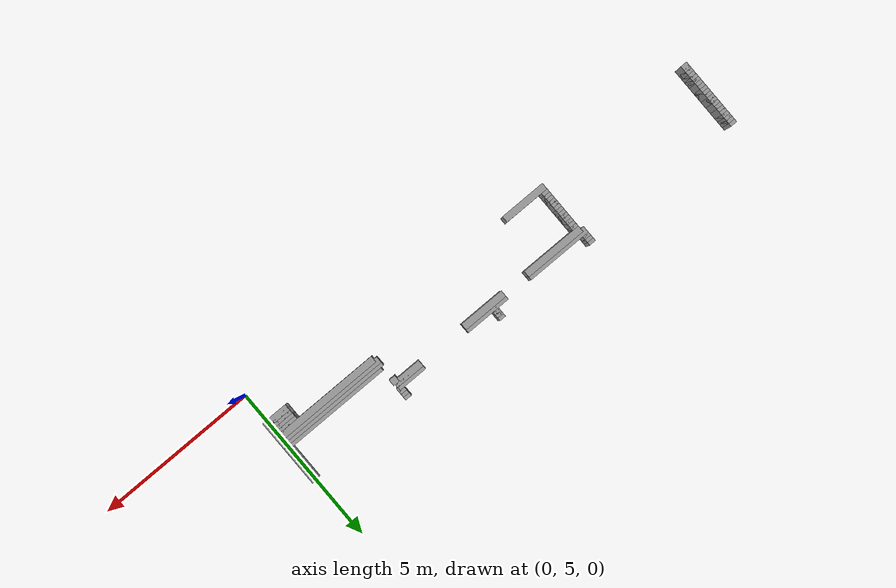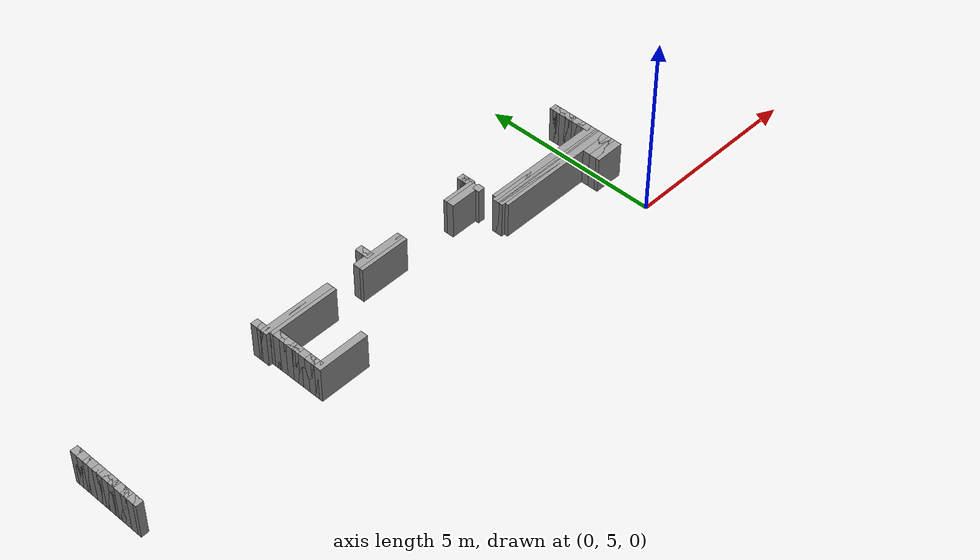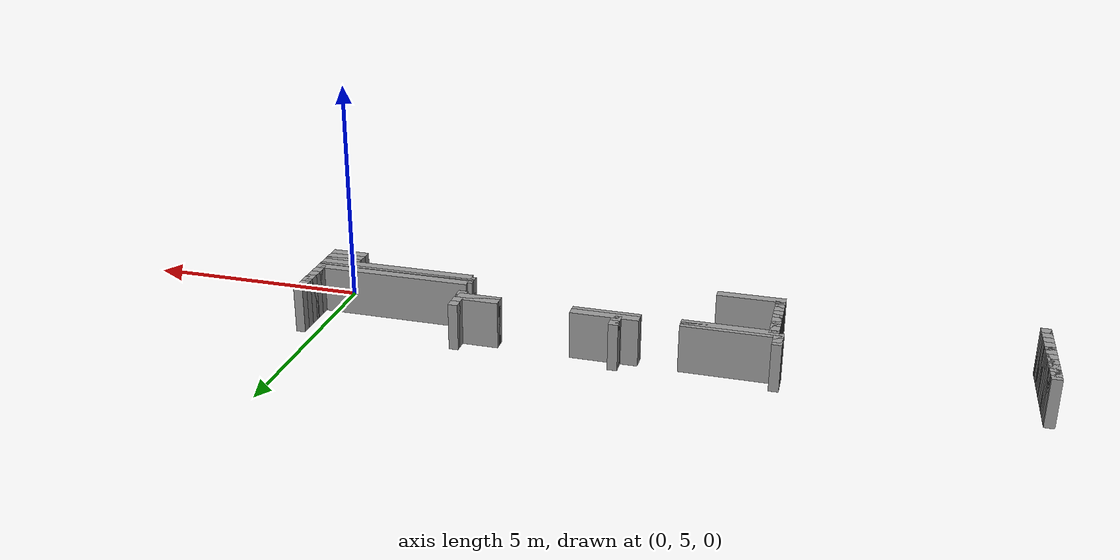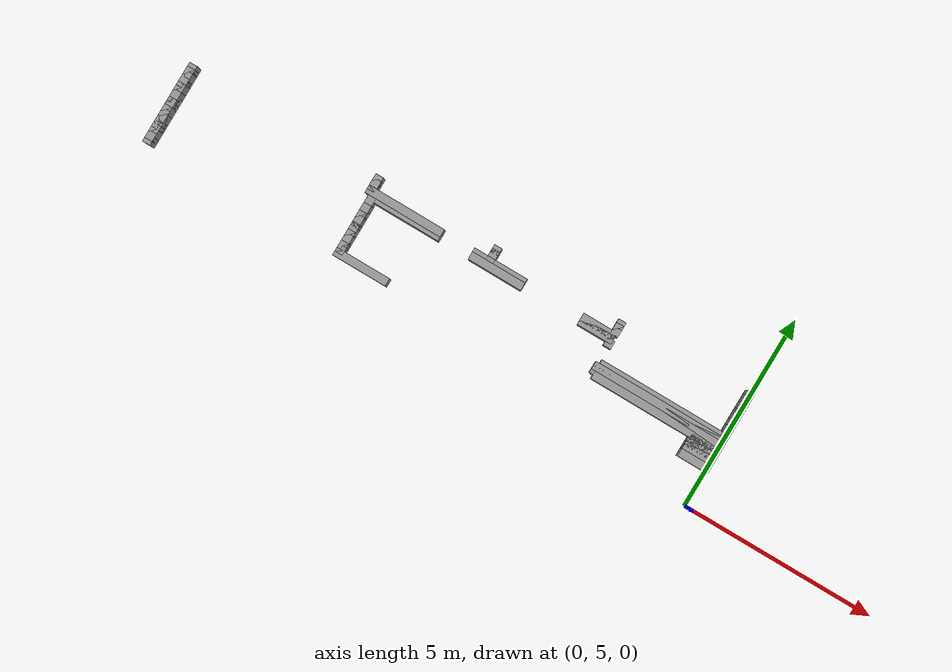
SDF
<sdf version="1.6">
 <world name="GridMap">
  <model name="GridMap">
   <link name="Wall_(92.0,59.0)">
    <collision name="Wall_(92.0,59.0)_Collision">
     <geometry><box><size>1.4000000000000001 0.2 1.0</size></box></geometry>
     <pose>-9.200000000000001 5.9 0.5 0 -0 0</pose>
    </collision>
    <visual name="Wall_(92.0,59.0)_Visual">
     <geometry><box><size>1.4000000000000001 0.2 1.0</size></box></geometry>
     <pose>-9.200000000000001 5.9 0.5 0 -0 0</pose>
     <material>
      <script><uri>file://media/materials/scripts/gazebo.material</uri><name>Gazebo/Grey</name></script>
      <ambient>1 1 1 1</ambient>
     </material>
     <meta><layer>0</layer></meta>
    </visual>
    <pose>0 0 0.5 0 -0 0</pose>
   </link>
   <link name="Wall_(148.5,59.0)">
    <collision name="Wall_(148.5,59.0)_Collision">
     <geometry><box><size>0.2 0.2 1.0</size></box></geometry>
     <pose>-14.850000000000001 5.9 0.5 0 -0 0</pose>
    </collision>
    <visual name="Wall_(148.5,59.0)_Visual">
     <geometry><box><size>0.2 0.2 1.0</size></box></geometry>
     <pose>-14.850000000000001 5.9 0.5 0 -0 0</pose>
     <material>
      <script><uri>file://media/materials/scripts/gazebo.material</uri><name>Gazebo/Grey</name></script>
      <ambient>1 1 1 1</ambient>
     </material>
     <meta><layer>0</layer></meta>
    </visual>
    <pose>0 0 0.5 0 -0 0</pose>
   </link>
   <link name="Wall_(4.0,60.0)">
    <collision name="Wall_(4.0,60.0)_Collision">
     <geometry><box><size>0.8 0.2 1.0</size></box></geometry>
     <pose>-0.4 6.0 0.5 0 -0 0</pose>
    </collision>
    <visual name="Wall_(4.0,60.0)_Visual">
     <geometry><box><size>0.8 0.2 1.0</size></box></geometry>
     <pose>-0.4 6.0 0.5 0 -0 0</pose>
     <material>
      <script><uri>file://media/materials/scripts/gazebo.material</uri><name>Gazebo/Grey</name></script>
      <ambient>1 1 1 1</ambient>
     </material>
     <meta><layer>0</layer></meta>
    </visual>
    <pose>0 0 0.5 0 -0 0</pose>
   </link>
   <link name="Wall_(98.0,60.0)">
    <collision name="Wall_(98.0,60.0)_Collision">
     <geometry><box><size>0.2 0.2 1.0</size></box></geometry>
     <pose>-9.8 6.0 0.5 0 -0 0</pose>
    </collision>
    <visual name="Wall_(98.0,60.0)_Visual">
     <geometry><box><size>0.2 0.2 1.0</size></box></geometry>
     <pose>-9.8 6.0 0.5 0 -0 0</pose>
     <material>
      <script><uri>file://media/materials/scripts/gazebo.material</uri><name>Gazebo/Grey</name></script>
      <ambient>1 1 1 1</ambient>
     </material>
     <meta><layer>0</layer></meta>
    </visual>
    <pose>0 0 0.5 0 -0 0</pose>
   </link>
   <link name="Wall_(148.5,60.0)">
    <collision name="Wall_(148.5,60.0)_Collision">
     <geometry><box><size>0.2 0.2 1.0</size></box></geometry>
     <pose>-14.850000000000001 6.0 0.5 0 -0 0</pose>
    </collision>
    <visual name="Wall_(148.5,60.0)_Visual">
     <geometry><box><size>0.2 0.2 1.0</size></box></geometry>
     <pose>-14.850000000000001 6.0 0.5 0 -0 0</pose>
     <material>
      <script><uri>file://media/materials/scripts/gazebo.material</uri><name>Gazebo/Grey</name></script>
      <ambient>1 1 1 1</ambient>
     </material>
     <meta><layer>0</layer></meta>
    </visual>
    <pose>0 0 0.5 0 -0 0</pose>
   </link>
   <link name="Wall_(4.0,61.0)">
    <collision name="Wall_(4.0,61.0)_Collision">
     <geometry><box><size>0.8 0.2 1.0</size></box></geometry>
     <pose>-0.4 6.1000000000000005 0.5 0 -0 0</pose>
    </collision>
    <visual name="Wall_(4.0,61.0)_Visual">
     <geometry><box><size>0.8 0.2 1.0</size></box></geometry>
     <pose>-0.4 6.1000000000000005 0.5 0 -0 0</pose>
     <material>
      <script><uri>file://media/materials/scripts/gazebo.material</uri><name>Gazebo/Grey</name></script>
      <ambient>1 1 1 1</ambient>
     </material>
     <meta><layer>0</layer></meta>
    </visual>
    <pose>0 0 0.5 0 -0 0</pose>
   </link>
   <link name="Wall_(98.0,61.0)">
    <collision name="Wall_(98.0,61.0)_Collision">
     <geometry><box><size>0.2 0.2 1.0</size></box></geometry>
     <pose>-9.8 6.1000000000000005 0.5 0 -0 0</pose>
    </collision>
    <visual name="Wall_(98.0,61.0)_Visual">
     <geometry><box><size>0.2 0.2 1.0</size></box></geometry>
     <pose>-9.8 6.1000000000000005 0.5 0 -0 0</pose>
     <material>
      <script><uri>file://media/materials/scripts/gazebo.material</uri><name>Gazebo/Grey</name></script>
      <ambient>1 1 1 1</ambient>
     </material>
     <meta><layer>0</layer></meta>
    </visual>
    <pose>0 0 0.5 0 -0 0</pose>
   </link>
   <link name="Wall_(148.5,61.0)">
    <collision name="Wall_(148.5,61.0)_Collision">
     <geometry><box><size>0.2 0.2 1.0</size></box></geometry>
     <pose>-14.850000000000001 6.1000000000000005 0.5 0 -0 0</pose>
    </collision>
    <visual name="Wall_(148.5,61.0)_Visual">
     <geometry><box><size>0.2 0.2 1.0</size></box></geometry>
     <pose>-14.850000000000001 6.1000000000000005 0.5 0 -0 0</pose>
     <material>
      <script><uri>file://media/materials/scripts/gazebo.material</uri><name>Gazebo/Grey</name></script>
      <ambient>1 1 1 1</ambient>
     </material>
     <meta><layer>0</layer></meta>
    </visual>
    <pose>0 0 0.5 0 -0 0</pose>
   </link>
   <link name="Wall_(4.0,62.0)">
    <collision name="Wall_(4.0,62.0)_Collision">
     <geometry><box><size>0.8 0.2 1.0</size></box></geometry>
     <pose>-0.4 6.2 0.5 0 -0 0</pose>
    </collision>
    <visual name="Wall_(4.0,62.0)_Visual">
     <geometry><box><size>0.8 0.2 1.0</size></box></geometry>
     <pose>-0.4 6.2 0.5 0 -0 0</pose>
     <material>
      <script><uri>file://media/materials/scripts/gazebo.material</uri><name>Gazebo/Grey</name></script>
      <ambient>1 1 1 1</ambient>
     </material>
     <meta><layer>0</layer></meta>
    </visual>
    <pose>0 0 0.5 0 -0 0</pose>
   </link>
   <link name="Wall_(98.0,62.0)">
    <collision name="Wall_(98.0,62.0)_Collision">
     <geometry><box><size>0.2 0.2 1.0</size></box></geometry>
     <pose>-9.8 6.2 0.5 0 -0 0</pose>
    </collision>
    <visual name="Wall_(98.0,62.0)_Visual">
     <geometry><box><size>0.2 0.2 1.0</size></box></geometry>
     <pose>-9.8 6.2 0.5 0 -0 0</pose>
     <material>
      <script><uri>file://media/materials/scripts/gazebo.material</uri><name>Gazebo/Grey</name></script>
      <ambient>1 1 1 1</ambient>
     </material>
     <meta><layer>0</layer></meta>
    </visual>
    <pose>0 0 0.5 0 -0 0</pose>
   </link>
   <link name="Wall_(148.5,62.0)">
    <collision name="Wall_(148.5,62.0)_Collision">
     <geometry><box><size>0.2 0.2 1.0</size></box></geometry>
     <pose>-14.850000000000001 6.2 0.5 0 -0 0</pose>
    </collision>
    <visual name="Wall_(148.5,62.0)_Visual">
     <geometry><box><size>0.2 0.2 1.0</size></box></geometry>
     <pose>-14.850000000000001 6.2 0.5 0 -0 0</pose>
     <material>
      <script><uri>file://media/materials/scripts/gazebo.material</uri><name>Gazebo/Grey</name></script>
      <ambient>1 1 1 1</ambient>
     </material>
     <meta><layer>0</layer></meta>
    </visual>
    <pose>0 0 0.5 0 -0 0</pose>
   </link>
   <link name="Wall_(4.0,63.0)">
    <collision name="Wall_(4.0,63.0)_Collision">
     <geometry><box><size>0.8 0.2 1.0</size></box></geometry>
     <pose>-0.4 6.300000000000001 0.5 0 -0 0</pose>
    </collision>
    <visual name="Wall_(4.0,63.0)_Visual">
     <geometry><box><size>0.8 0.2 1.0</size></box></geometry>
     <pose>-0.4 6.300000000000001 0.5 0 -0 0</pose>
     <material>
      <script><uri>file://media/materials/scripts/gazebo.material</uri><name>Gazebo/Grey</name></script>
      <ambient>1 1 1 1</ambient>
     </material>
     <meta><layer>0</layer></meta>
    </visual>
    <pose>0 0 0.5 0 -0 0</pose>
   </link>
   <link name="Wall_(98.0,63.0)">
    <collision name="Wall_(98.0,63.0)_Collision">
     <geometry><box><size>0.2 0.2 1.0</size></box></geometry>
     <pose>-9.8 6.300000000000001 0.5 0 -0 0</pose>
    </collision>
    <visual name="Wall_(98.0,63.0)_Visual">
     <geometry><box><size>0.2 0.2 1.0</size></box></geometry>
     <pose>-9.8 6.300000000000001 0.5 0 -0 0</pose>
     <material>
      <script><uri>file://media/materials/scripts/gazebo.material</uri><name>Gazebo/Grey</name></script>
      <ambient>1 1 1 1</ambient>
     </material>
     <meta><layer>0</layer></meta>
    </visual>
    <pose>0 0 0.5 0 -0 0</pose>
   </link>
   <link name="Wall_(148.5,63.0)">
    <collision name="Wall_(148.5,63.0)_Collision">
     <geometry><box><size>0.2 0.2 1.0</size></box></geometry>
     <pose>-14.850000000000001 6.300000000000001 0.5 0 -0 0</pose>
    </collision>
    <visual name="Wall_(148.5,63.0)_Visual">
     <geometry><box><size>0.2 0.2 1.0</size></box></geometry>
     <pose>-14.850000000000001 6.300000000000001 0.5 0 -0 0</pose>
     <material>
      <script><uri>file://media/materials/scripts/gazebo.material</uri><name>Gazebo/Grey</name></script>
      <ambient>1 1 1 1</ambient>
     </material>
     <meta><layer>0</layer></meta>
    </visual>
    <pose>0 0 0.5 0 -0 0</pose>
   </link>
   <link name="Wall_(4.0,64.0)">
    <collision name="Wall_(4.0,64.0)_Collision">
     <geometry><box><size>0.8 0.2 1.0</size></box></geometry>
     <pose>-0.4 6.4 0.5 0 -0 0</pose>
    </collision>
    <visual name="Wall_(4.0,64.0)_Visual">
     <geometry><box><size>0.8 0.2 1.0</size></box></geometry>
     <pose>-0.4 6.4 0.5 0 -0 0</pose>
     <material>
      <script><uri>file://media/materials/scripts/gazebo.material</uri><name>Gazebo/Grey</name></script>
      <ambient>1 1 1 1</ambient>
     </material>
     <meta><layer>0</layer></meta>
    </visual>
    <pose>0 0 0.5 0 -0 0</pose>
   </link>
   <link name="Wall_(98.0,64.0)">
    <collision name="Wall_(98.0,64.0)_Collision">
     <geometry><box><size>0.2 0.2 1.0</size></box></geometry>
     <pose>-9.8 6.4 0.5 0 -0 0</pose>
    </collision>
    <visual name="Wall_(98.0,64.0)_Visual">
     <geometry><box><size>0.2 0.2 1.0</size></box></geometry>
     <pose>-9.8 6.4 0.5 0 -0 0</pose>
     <material>
      <script><uri>file://media/materials/scripts/gazebo.material</uri><name>Gazebo/Grey</name></script>
      <ambient>1 1 1 1</ambient>
     </material>
     <meta><layer>0</layer></meta>
    </visual>
    <pose>0 0 0.5 0 -0 0</pose>
   </link>
   <link name="Wall_(148.5,64.0)">
    <collision name="Wall_(148.5,64.0)_Collision">
     <geometry><box><size>0.2 0.2 1.0</size></box></geometry>
     <pose>-14.850000000000001 6.4 0.5 0 -0 0</pose>
    </collision>
    <visual name="Wall_(148.5,64.0)_Visual">
     <geometry><box><size>0.2 0.2 1.0</size></box></geometry>
     <pose>-14.850000000000001 6.4 0.5 0 -0 0</pose>
     <material>
      <script><uri>file://media/materials/scripts/gazebo.material</uri><name>Gazebo/Grey</name></script>
      <ambient>1 1 1 1</ambient>
     </material>
     <meta><layer>0</layer></meta>
    </visual>
    <pose>0 0 0.5 0 -0 0</pose>
   </link>
   <link name="Wall_(17.0,65.0)">
    <collision name="Wall_(17.0,65.0)_Collision">
     <geometry><box><size>3.4000000000000004 0.2 1.0</size></box></geometry>
     <pose>-1.7000000000000002 6.5 0.5 0 -0 0</pose>
    </collision>
    <visual name="Wall_(17.0,65.0)_Visual">
     <geometry><box><size>3.4000000000000004 0.2 1.0</size></box></geometry>
     <pose>-1.7000000000000002 6.5 0.5 0 -0 0</pose>
     <material>
      <script><uri>file://media/materials/scripts/gazebo.material</uri><name>Gazebo/Grey</name></script>
      <ambient>1 1 1 1</ambient>
     </material>
     <meta><layer>0</layer></meta>
    </visual>
    <pose>0 0 0.5 0 -0 0</pose>
   </link>
   <link name="Wall_(98.0,65.0)">
    <collision name="Wall_(98.0,65.0)_Collision">
     <geometry><box><size>0.2 0.2 1.0</size></box></geometry>
     <pose>-9.8 6.5 0.5 0 -0 0</pose>
    </collision>
    <visual name="Wall_(98.0,65.0)_Visual">
     <geometry><box><size>0.2 0.2 1.0</size></box></geometry>
     <pose>-9.8 6.5 0.5 0 -0 0</pose>
     <material>
      <script><uri>file://media/materials/scripts/gazebo.material</uri><name>Gazebo/Grey</name></script>
      <ambient>1 1 1 1</ambient>
     </material>
     <meta><layer>0</layer></meta>
    </visual>
    <pose>0 0 0.5 0 -0 0</pose>
   </link>
   <link name="Wall_(148.5,65.0)">
    <collision name="Wall_(148.5,65.0)_Collision">
     <geometry><box><size>0.2 0.2 1.0</size></box></geometry>
     <pose>-14.850000000000001 6.5 0.5 0 -0 0</pose>
    </collision>
    <visual name="Wall_(148.5,65.0)_Visual">
     <geometry><box><size>0.2 0.2 1.0</size></box></geometry>
     <pose>-14.850000000000001 6.5 0.5 0 -0 0</pose>
     <material>
      <script><uri>file://media/materials/scripts/gazebo.material</uri><name>Gazebo/Grey</name></script>
      <ambient>1 1 1 1</ambient>
     </material>
     <meta><layer>0</layer></meta>
    </visual>
    <pose>0 0 0.5 0 -0 0</pose>
   </link>
   <link name="Wall_(17.5,66.0)">
    <collision name="Wall_(17.5,66.0)_Collision">
     <geometry><box><size>3.5 0.2 1.0</size></box></geometry>
     <pose>-1.75 6.6000000000000005 0.5 0 -0 0</pose>
    </collision>
    <visual name="Wall_(17.5,66.0)_Visual">
     <geometry><box><size>3.5 0.2 1.0</size></box></geometry>
     <pose>-1.75 6.6000000000000005 0.5 0 -0 0</pose>
     <material>
      <script><uri>file://media/materials/scripts/gazebo.material</uri><name>Gazebo/Grey</name></script>
      <ambient>1 1 1 1</ambient>
     </material>
     <meta><layer>0</layer></meta>
    </visual>
    <pose>0 0 0.5 0 -0 0</pose>
   </link>
   <link name="Wall_(98.0,66.0)">
    <collision name="Wall_(98.0,66.0)_Collision">
     <geometry><box><size>0.2 0.2 1.0</size></box></geometry>
     <pose>-9.8 6.6000000000000005 0.5 0 -0 0</pose>
    </collision>
    <visual name="Wall_(98.0,66.0)_Visual">
     <geometry><box><size>0.2 0.2 1.0</size></box></geometry>
     <pose>-9.8 6.6000000000000005 0.5 0 -0 0</pose>
     <material>
      <script><uri>file://media/materials/scripts/gazebo.material</uri><name>Gazebo/Grey</name></script>
      <ambient>1 1 1 1</ambient>
     </material>
     <meta><layer>0</layer></meta>
    </visual>
    <pose>0 0 0.5 0 -0 0</pose>
   </link>
   <link name="Wall_(148.5,66.0)">
    <collision name="Wall_(148.5,66.0)_Collision">
     <geometry><box><size>0.2 0.2 1.0</size></box></geometry>
     <pose>-14.850000000000001 6.6000000000000005 0.5 0 -0 0</pose>
    </collision>
    <visual name="Wall_(148.5,66.0)_Visual">
     <geometry><box><size>0.2 0.2 1.0</size></box></geometry>
     <pose>-14.850000000000001 6.6000000000000005 0.5 0 -0 0</pose>
     <material>
      <script><uri>file://media/materials/scripts/gazebo.material</uri><name>Gazebo/Grey</name></script>
      <ambient>1 1 1 1</ambient>
     </material>
     <meta><layer>0</layer></meta>
    </visual>
    <pose>0 0 0.5 0 -0 0</pose>
   </link>
   <link name="Wall_(17.5,67.0)">
    <collision name="Wall_(17.5,67.0)_Collision">
     <geometry><box><size>3.5 0.2 1.0</size></box></geometry>
     <pose>-1.75 6.7 0.5 0 -0 0</pose>
    </collision>
    <visual name="Wall_(17.5,67.0)_Visual">
     <geometry><box><size>3.5 0.2 1.0</size></box></geometry>
     <pose>-1.75 6.7 0.5 0 -0 0</pose>
     <material>
      <script><uri>file://media/materials/scripts/gazebo.material</uri><name>Gazebo/Grey</name></script>
      <ambient>1 1 1 1</ambient>
     </material>
     <meta><layer>0</layer></meta>
    </visual>
    <pose>0 0 0.5 0 -0 0</pose>
   </link>
   <link name="Wall_(98.0,67.0)">
    <collision name="Wall_(98.0,67.0)_Collision">
     <geometry><box><size>0.2 0.2 1.0</size></box></geometry>
     <pose>-9.8 6.7 0.5 0 -0 0</pose>
    </collision>
    <visual name="Wall_(98.0,67.0)_Visual">
     <geometry><box><size>0.2 0.2 1.0</size></box></geometry>
     <pose>-9.8 6.7 0.5 0 -0 0</pose>
     <material>
      <script><uri>file://media/materials/scripts/gazebo.material</uri><name>Gazebo/Grey</name></script>
      <ambient>1 1 1 1</ambient>
     </material>
     <meta><layer>0</layer></meta>
    </visual>
    <pose>0 0 0.5 0 -0 0</pose>
   </link>
   <link name="Wall_(148.5,67.0)">
    <collision name="Wall_(148.5,67.0)_Collision">
     <geometry><box><size>0.2 0.2 1.0</size></box></geometry>
     <pose>-14.850000000000001 6.7 0.5 0 -0 0</pose>
    </collision>
    <visual name="Wall_(148.5,67.0)_Visual">
     <geometry><box><size>0.2 0.2 1.0</size></box></geometry>
     <pose>-14.850000000000001 6.7 0.5 0 -0 0</pose>
     <material>
      <script><uri>file://media/materials/scripts/gazebo.material</uri><name>Gazebo/Grey</name></script>
      <ambient>1 1 1 1</ambient>
     </material>
     <meta><layer>0</layer></meta>
    </visual>
    <pose>0 0 0.5 0 -0 0</pose>
   </link>
   <link name="Wall_(17.0,68.0)">
    <collision name="Wall_(17.0,68.0)_Collision">
     <geometry><box><size>3.4000000000000004 0.2 1.0</size></box></geometry>
     <pose>-1.7000000000000002 6.800000000000001 0.5 0 -0 0</pose>
    </collision>
    <visual name="Wall_(17.0,68.0)_Visual">
     <geometry><box><size>3.4000000000000004 0.2 1.0</size></box></geometry>
     <pose>-1.7000000000000002 6.800000000000001 0.5 0 -0 0</pose>
     <material>
      <script><uri>file://media/materials/scripts/gazebo.material</uri><name>Gazebo/Grey</name></script>
      <ambient>1 1 1 1</ambient>
     </material>
     <meta><layer>0</layer></meta>
    </visual>
    <pose>0 0 0.5 0 -0 0</pose>
   </link>
   <link name="Wall_(98.0,68.0)">
    <collision name="Wall_(98.0,68.0)_Collision">
     <geometry><box><size>0.2 0.2 1.0</size></box></geometry>
     <pose>-9.8 6.800000000000001 0.5 0 -0 0</pose>
    </collision>
    <visual name="Wall_(98.0,68.0)_Visual">
     <geometry><box><size>0.2 0.2 1.0</size></box></geometry>
     <pose>-9.8 6.800000000000001 0.5 0 -0 0</pose>
     <material>
      <script><uri>file://media/materials/scripts/gazebo.material</uri><name>Gazebo/Grey</name></script>
      <ambient>1 1 1 1</ambient>
     </material>
     <meta><layer>0</layer></meta>
    </visual>
    <pose>0 0 0.5 0 -0 0</pose>
   </link>
   <link name="Wall_(148.5,68.0)">
    <collision name="Wall_(148.5,68.0)_Collision">
     <geometry><box><size>0.2 0.2 1.0</size></box></geometry>
     <pose>-14.850000000000001 6.800000000000001 0.5 0 -0 0</pose>
    </collision>
    <visual name="Wall_(148.5,68.0)_Visual">
     <geometry><box><size>0.2 0.2 1.0</size></box></geometry>
     <pose>-14.850000000000001 6.800000000000001 0.5 0 -0 0</pose>
     <material>
      <script><uri>file://media/materials/scripts/gazebo.material</uri><name>Gazebo/Grey</name></script>
      <ambient>1 1 1 1</ambient>
     </material>
     <meta><layer>0</layer></meta>
    </visual>
    <pose>0 0 0.5 0 -0 0</pose>
   </link>
   <link name="Wall_(1.0,69.0)">
    <collision name="Wall_(1.0,69.0)_Collision">
     <geometry><box><size>0.2 0.2 1.0</size></box></geometry>
     <pose>-0.1 6.9 0.5 0 -0 0</pose>
    </collision>
    <visual name="Wall_(1.0,69.0)_Visual">
     <geometry><box><size>0.2 0.2 1.0</size></box></geometry>
     <pose>-0.1 6.9 0.5 0 -0 0</pose>
     <material>
      <script><uri>file://media/materials/scripts/gazebo.material</uri><name>Gazebo/Grey</name></script>
      <ambient>1 1 1 1</ambient>
     </material>
     <meta><layer>0</layer></meta>
    </visual>
    <pose>0 0 0.5 0 -0 0</pose>
   </link>
   <link name="Wall_(98.0,69.0)">
    <collision name="Wall_(98.0,69.0)_Collision">
     <geometry><box><size>0.2 0.2 1.0</size></box></geometry>
     <pose>-9.8 6.9 0.5 0 -0 0</pose>
    </collision>
    <visual name="Wall_(98.0,69.0)_Visual">
     <geometry><box><size>0.2 0.2 1.0</size></box></geometry>
     <pose>-9.8 6.9 0.5 0 -0 0</pose>
     <material>
      <script><uri>file://media/materials/scripts/gazebo.material</uri><name>Gazebo/Grey</name></script>
      <ambient>1 1 1 1</ambient>
     </material>
     <meta><layer>0</layer></meta>
    </visual>
    <pose>0 0 0.5 0 -0 0</pose>
   </link>
   <link name="Wall_(148.5,69.0)">
    <collision name="Wall_(148.5,69.0)_Collision">
     <geometry><box><size>0.2 0.2 1.0</size></box></geometry>
     <pose>-14.850000000000001 6.9 0.5 0 -0 0</pose>
    </collision>
    <visual name="Wall_(148.5,69.0)_Visual">
     <geometry><box><size>0.2 0.2 1.0</size></box></geometry>
     <pose>-14.850000000000001 6.9 0.5 0 -0 0</pose>
     <material>
      <script><uri>file://media/materials/scripts/gazebo.material</uri><name>Gazebo/Grey</name></script>
      <ambient>1 1 1 1</ambient>
     </material>
     <meta><layer>0</layer></meta>
    </visual>
    <pose>0 0 0.5 0 -0 0</pose>
   </link>
   <link name="Wall_(1.0,70.0)">
    <collision name="Wall_(1.0,70.0)_Collision">
     <geometry><box><size>0.2 0.2 1.0</size></box></geometry>
     <pose>-0.1 7.0 0.5 0 -0 0</pose>
    </collision>
    <visual name="Wall_(1.0,70.0)_Visual">
     <geometry><box><size>0.2 0.2 1.0</size></box></geometry>
     <pose>-0.1 7.0 0.5 0 -0 0</pose>
     <material>
      <script><uri>file://media/materials/scripts/gazebo.material</uri><name>Gazebo/Grey</name></script>
      <ambient>1 1 1 1</ambient>
     </material>
     <meta><layer>0</layer></meta>
    </visual>
    <pose>0 0 0.5 0 -0 0</pose>
   </link>
   <link name="Wall_(98.0,70.0)">
    <collision name="Wall_(98.0,70.0)_Collision">
     <geometry><box><size>0.2 0.2 1.0</size></box></geometry>
     <pose>-9.8 7.0 0.5 0 -0 0</pose>
    </collision>
    <visual name="Wall_(98.0,70.0)_Visual">
     <geometry><box><size>0.2 0.2 1.0</size></box></geometry>
     <pose>-9.8 7.0 0.5 0 -0 0</pose>
     <material>
      <script><uri>file://media/materials/scripts/gazebo.material</uri><name>Gazebo/Grey</name></script>
      <ambient>1 1 1 1</ambient>
     </material>
     <meta><layer>0</layer></meta>
    </visual>
    <pose>0 0 0.5 0 -0 0</pose>
   </link>
   <link name="Wall_(148.5,70.0)">
    <collision name="Wall_(148.5,70.0)_Collision">
     <geometry><box><size>0.2 0.2 1.0</size></box></geometry>
     <pose>-14.850000000000001 7.0 0.5 0 -0 0</pose>
    </collision>
    <visual name="Wall_(148.5,70.0)_Visual">
     <geometry><box><size>0.2 0.2 1.0</size></box></geometry>
     <pose>-14.850000000000001 7.0 0.5 0 -0 0</pose>
     <material>
      <script><uri>file://media/materials/scripts/gazebo.material</uri><name>Gazebo/Grey</name></script>
      <ambient>1 1 1 1</ambient>
     </material>
     <meta><layer>0</layer></meta>
    </visual>
    <pose>0 0 0.5 0 -0 0</pose>
   </link>
   <link name="Wall_(1.0,71.0)">
    <collision name="Wall_(1.0,71.0)_Collision">
     <geometry><box><size>0.2 0.2 1.0</size></box></geometry>
     <pose>-0.1 7.1000000000000005 0.5 0 -0 0</pose>
    </collision>
    <visual name="Wall_(1.0,71.0)_Visual">
     <geometry><box><size>0.2 0.2 1.0</size></box></geometry>
     <pose>-0.1 7.1000000000000005 0.5 0 -0 0</pose>
     <material>
      <script><uri>file://media/materials/scripts/gazebo.material</uri><name>Gazebo/Grey</name></script>
      <ambient>1 1 1 1</ambient>
     </material>
     <meta><layer>0</layer></meta>
    </visual>
    <pose>0 0 0.5 0 -0 0</pose>
   </link>
   <link name="Wall_(98.0,71.0)">
    <collision name="Wall_(98.0,71.0)_Collision">
     <geometry><box><size>0.2 0.2 1.0</size></box></geometry>
     <pose>-9.8 7.1000000000000005 0.5 0 -0 0</pose>
    </collision>
    <visual name="Wall_(98.0,71.0)_Visual">
     <geometry><box><size>0.2 0.2 1.0</size></box></geometry>
     <pose>-9.8 7.1000000000000005 0.5 0 -0 0</pose>
     <material>
      <script><uri>file://media/materials/scripts/gazebo.material</uri><name>Gazebo/Grey</name></script>
      <ambient>1 1 1 1</ambient>
     </material>
     <meta><layer>0</layer></meta>
    </visual>
    <pose>0 0 0.5 0 -0 0</pose>
   </link>
   <link name="Wall_(148.5,71.0)">
    <collision name="Wall_(148.5,71.0)_Collision">
     <geometry><box><size>0.2 0.2 1.0</size></box></geometry>
     <pose>-14.850000000000001 7.1000000000000005 0.5 0 -0 0</pose>
    </collision>
    <visual name="Wall_(148.5,71.0)_Visual">
     <geometry><box><size>0.2 0.2 1.0</size></box></geometry>
     <pose>-14.850000000000001 7.1000000000000005 0.5 0 -0 0</pose>
     <material>
      <script><uri>file://media/materials/scripts/gazebo.material</uri><name>Gazebo/Grey</name></script>
      <ambient>1 1 1 1</ambient>
     </material>
     <meta><layer>0</layer></meta>
    </visual>
    <pose>0 0 0.5 0 -0 0</pose>
   </link>
   <link name="Wall_(1.0,72.0)">
    <collision name="Wall_(1.0,72.0)_Collision">
     <geometry><box><size>0.2 0.2 1.0</size></box></geometry>
     <pose>-0.1 7.2 0.5 0 -0 0</pose>
    </collision>
    <visual name="Wall_(1.0,72.0)_Visual">
     <geometry><box><size>0.2 0.2 1.0</size></box></geometry>
     <pose>-0.1 7.2 0.5 0 -0 0</pose>
     <material>
      <script><uri>file://media/materials/scripts/gazebo.material</uri><name>Gazebo/Grey</name></script>
      <ambient>1 1 1 1</ambient>
     </material>
     <meta><layer>0</layer></meta>
    </visual>
    <pose>0 0 0.5 0 -0 0</pose>
   </link>
   <link name="Wall_(98.0,72.0)">
    <collision name="Wall_(98.0,72.0)_Collision">
     <geometry><box><size>0.2 0.2 1.0</size></box></geometry>
     <pose>-9.8 7.2 0.5 0 -0 0</pose>
    </collision>
    <visual name="Wall_(98.0,72.0)_Visual">
     <geometry><box><size>0.2 0.2 1.0</size></box></geometry>
     <pose>-9.8 7.2 0.5 0 -0 0</pose>
     <material>
      <script><uri>file://media/materials/scripts/gazebo.material</uri><name>Gazebo/Grey</name></script>
      <ambient>1 1 1 1</ambient>
     </material>
     <meta><layer>0</layer></meta>
    </visual>
    <pose>0 0 0.5 0 -0 0</pose>
   </link>
   <link name="Wall_(148.5,72.0)">
    <collision name="Wall_(148.5,72.0)_Collision">
     <geometry><box><size>0.2 0.2 1.0</size></box></geometry>
     <pose>-14.850000000000001 7.2 0.5 0 -0 0</pose>
    </collision>
    <visual name="Wall_(148.5,72.0)_Visual">
     <geometry><box><size>0.2 0.2 1.0</size></box></geometry>
     <pose>-14.850000000000001 7.2 0.5 0 -0 0</pose>
     <material>
      <script><uri>file://media/materials/scripts/gazebo.material</uri><name>Gazebo/Grey</name></script>
      <ambient>1 1 1 1</ambient>
     </material>
     <meta><layer>0</layer></meta>
    </visual>
    <pose>0 0 0.5 0 -0 0</pose>
   </link>
   <link name="Wall_(1.0,73.0)">
    <collision name="Wall_(1.0,73.0)_Collision">
     <geometry><box><size>0.2 0.2 1.0</size></box></geometry>
     <pose>-0.1 7.300000000000001 0.5 0 -0 0</pose>
    </collision>
    <visual name="Wall_(1.0,73.0)_Visual">
     <geometry><box><size>0.2 0.2 1.0</size></box></geometry>
     <pose>-0.1 7.300000000000001 0.5 0 -0 0</pose>
     <material>
      <script><uri>file://media/materials/scripts/gazebo.material</uri><name>Gazebo/Grey</name></script>
      <ambient>1 1 1 1</ambient>
     </material>
     <meta><layer>0</layer></meta>
    </visual>
    <pose>0 0 0.5 0 -0 0</pose>
   </link>
   <link name="Wall_(34.5,73.0)">
    <collision name="Wall_(34.5,73.0)_Collision">
     <geometry><box><size>0.2 0.2 1.0</size></box></geometry>
     <pose>-3.45 7.300000000000001 0.5 0 -0 0</pose>
    </collision>
    <visual name="Wall_(34.5,73.0)_Visual">
     <geometry><box><size>0.2 0.2 1.0</size></box></geometry>
     <pose>-3.45 7.300000000000001 0.5 0 -0 0</pose>
     <material>
      <script><uri>file://media/materials/scripts/gazebo.material</uri><name>Gazebo/Grey</name></script>
      <ambient>1 1 1 1</ambient>
     </material>
     <meta><layer>0</layer></meta>
    </visual>
    <pose>0 0 0.5 0 -0 0</pose>
   </link>
   <link name="Wall_(98.0,73.0)">
    <collision name="Wall_(98.0,73.0)_Collision">
     <geometry><box><size>0.2 0.2 1.0</size></box></geometry>
     <pose>-9.8 7.300000000000001 0.5 0 -0 0</pose>
    </collision>
    <visual name="Wall_(98.0,73.0)_Visual">
     <geometry><box><size>0.2 0.2 1.0</size></box></geometry>
     <pose>-9.8 7.300000000000001 0.5 0 -0 0</pose>
     <material>
      <script><uri>file://media/materials/scripts/gazebo.material</uri><name>Gazebo/Grey</name></script>
      <ambient>1 1 1 1</ambient>
     </material>
     <meta><layer>0</layer></meta>
    </visual>
    <pose>0 0 0.5 0 -0 0</pose>
   </link>
   <link name="Wall_(148.5,73.0)">
    <collision name="Wall_(148.5,73.0)_Collision">
     <geometry><box><size>0.2 0.2 1.0</size></box></geometry>
     <pose>-14.850000000000001 7.300000000000001 0.5 0 -0 0</pose>
    </collision>
    <visual name="Wall_(148.5,73.0)_Visual">
     <geometry><box><size>0.2 0.2 1.0</size></box></geometry>
     <pose>-14.850000000000001 7.300000000000001 0.5 0 -0 0</pose>
     <material>
      <script><uri>file://media/materials/scripts/gazebo.material</uri><name>Gazebo/Grey</name></script>
      <ambient>1 1 1 1</ambient>
     </material>
     <meta><layer>0</layer></meta>
    </visual>
    <pose>0 0 0.5 0 -0 0</pose>
   </link>
   <link name="Wall_(1.0,74.0)">
    <collision name="Wall_(1.0,74.0)_Collision">
     <geometry><box><size>0.2 0.2 1.0</size></box></geometry>
     <pose>-0.1 7.4 0.5 0 -0 0</pose>
    </collision>
    <visual name="Wall_(1.0,74.0)_Visual">
     <geometry><box><size>0.2 0.2 1.0</size></box></geometry>
     <pose>-0.1 7.4 0.5 0 -0 0</pose>
     <material>
      <script><uri>file://media/materials/scripts/gazebo.material</uri><name>Gazebo/Grey</name></script>
      <ambient>1 1 1 1</ambient>
     </material>
     <meta><layer>0</layer></meta>
    </visual>
    <pose>0 0 0.5 0 -0 0</pose>
   </link>
   <link name="Wall_(38.5,74.0)">
    <collision name="Wall_(38.5,74.0)_Collision">
     <geometry><box><size>0.9 0.2 1.0</size></box></geometry>
     <pose>-3.85 7.4 0.5 0 -0 0</pose>
    </collision>
    <visual name="Wall_(38.5,74.0)_Visual">
     <geometry><box><size>0.9 0.2 1.0</size></box></geometry>
     <pose>-3.85 7.4 0.5 0 -0 0</pose>
     <material>
      <script><uri>file://media/materials/scripts/gazebo.material</uri><name>Gazebo/Grey</name></script>
      <ambient>1 1 1 1</ambient>
     </material>
     <meta><layer>0</layer></meta>
    </visual>
    <pose>0 0 0.5 0 -0 0</pose>
   </link>
   <link name="Wall_(65.0,74.0)">
    <collision name="Wall_(65.0,74.0)_Collision">
     <geometry><box><size>1.4000000000000001 0.2 1.0</size></box></geometry>
     <pose>-6.5 7.4 0.5 0 -0 0</pose>
    </collision>
    <visual name="Wall_(65.0,74.0)_Visual">
     <geometry><box><size>1.4000000000000001 0.2 1.0</size></box></geometry>
     <pose>-6.5 7.4 0.5 0 -0 0</pose>
     <material>
      <script><uri>file://media/materials/scripts/gazebo.material</uri><name>Gazebo/Grey</name></script>
      <ambient>1 1 1 1</ambient>
     </material>
     <meta><layer>0</layer></meta>
    </visual>
    <pose>0 0 0.5 0 -0 0</pose>
   </link>
   <link name="Wall_(89.5,74.0)">
    <collision name="Wall_(89.5,74.0)_Collision">
     <geometry><box><size>1.9000000000000001 0.2 1.0</size></box></geometry>
     <pose>-8.950000000000001 7.4 0.5 0 -0 0</pose>
    </collision>
    <visual name="Wall_(89.5,74.0)_Visual">
     <geometry><box><size>1.9000000000000001 0.2 1.0</size></box></geometry>
     <pose>-8.950000000000001 7.4 0.5 0 -0 0</pose>
     <material>
      <script><uri>file://media/materials/scripts/gazebo.material</uri><name>Gazebo/Grey</name></script>
      <ambient>1 1 1 1</ambient>
     </material>
     <meta><layer>0</layer></meta>
    </visual>
    <pose>0 0 0.5 0 -0 0</pose>
   </link>
   <link name="Wall_(148.5,74.0)">
    <collision name="Wall_(148.5,74.0)_Collision">
     <geometry><box><size>0.2 0.2 1.0</size></box></geometry>
     <pose>-14.850000000000001 7.4 0.5 0 -0 0</pose>
    </collision>
    <visual name="Wall_(148.5,74.0)_Visual">
     <geometry><box><size>0.2 0.2 1.0</size></box></geometry>
     <pose>-14.850000000000001 7.4 0.5 0 -0 0</pose>
     <material>
      <script><uri>file://media/materials/scripts/gazebo.material</uri><name>Gazebo/Grey</name></script>
      <ambient>1 1 1 1</ambient>
     </material>
     <meta><layer>0</layer></meta>
    </visual>
    <pose>0 0 0.5 0 -0 0</pose>
   </link>
   <link name="Wall_(1.0,75.0)">
    <collision name="Wall_(1.0,75.0)_Collision">
     <geometry><box><size>0.2 0.2 1.0</size></box></geometry>
     <pose>-0.1 7.5 0.5 0 -0 0</pose>
    </collision>
    <visual name="Wall_(1.0,75.0)_Visual">
     <geometry><box><size>0.2 0.2 1.0</size></box></geometry>
     <pose>-0.1 7.5 0.5 0 -0 0</pose>
     <material>
      <script><uri>file://media/materials/scripts/gazebo.material</uri><name>Gazebo/Grey</name></script>
      <ambient>1 1 1 1</ambient>
     </material>
     <meta><layer>0</layer></meta>
    </visual>
    <pose>0 0 0.5 0 -0 0</pose>
   </link>
   <link name="Wall_(38.5,75.0)">
    <collision name="Wall_(38.5,75.0)_Collision">
     <geometry><box><size>0.9 0.2 1.0</size></box></geometry>
     <pose>-3.85 7.5 0.5 0 -0 0</pose>
    </collision>
    <visual name="Wall_(38.5,75.0)_Visual">
     <geometry><box><size>0.9 0.2 1.0</size></box></geometry>
     <pose>-3.85 7.5 0.5 0 -0 0</pose>
     <material>
      <script><uri>file://media/materials/scripts/gazebo.material</uri><name>Gazebo/Grey</name></script>
      <ambient>1 1 1 1</ambient>
     </material>
     <meta><layer>0</layer></meta>
    </visual>
    <pose>0 0 0.5 0 -0 0</pose>
   </link>
   <link name="Wall_(65.0,75.0)">
    <collision name="Wall_(65.0,75.0)_Collision">
     <geometry><box><size>1.4000000000000001 0.2 1.0</size></box></geometry>
     <pose>-6.5 7.5 0.5 0 -0 0</pose>
    </collision>
    <visual name="Wall_(65.0,75.0)_Visual">
     <geometry><box><size>1.4000000000000001 0.2 1.0</size></box></geometry>
     <pose>-6.5 7.5 0.5 0 -0 0</pose>
     <material>
      <script><uri>file://media/materials/scripts/gazebo.material</uri><name>Gazebo/Grey</name></script>
      <ambient>1 1 1 1</ambient>
     </material>
     <meta><layer>0</layer></meta>
    </visual>
    <pose>0 0 0.5 0 -0 0</pose>
   </link>
   <link name="Wall_(90.0,75.0)">
    <collision name="Wall_(90.0,75.0)_Collision">
     <geometry><box><size>2.0 0.2 1.0</size></box></geometry>
     <pose>-9.0 7.5 0.5 0 -0 0</pose>
    </collision>
    <visual name="Wall_(90.0,75.0)_Visual">
     <geometry><box><size>2.0 0.2 1.0</size></box></geometry>
     <pose>-9.0 7.5 0.5 0 -0 0</pose>
     <material>
      <script><uri>file://media/materials/scripts/gazebo.material</uri><name>Gazebo/Grey</name></script>
      <ambient>1 1 1 1</ambient>
     </material>
     <meta><layer>0</layer></meta>
    </visual>
    <pose>0 0 0.5 0 -0 0</pose>
   </link>
   <link name="Wall_(148.5,75.0)">
    <collision name="Wall_(148.5,75.0)_Collision">
     <geometry><box><size>0.2 0.2 1.0</size></box></geometry>
     <pose>-14.850000000000001 7.5 0.5 0 -0 0</pose>
    </collision>
    <visual name="Wall_(148.5,75.0)_Visual">
     <geometry><box><size>0.2 0.2 1.0</size></box></geometry>
     <pose>-14.850000000000001 7.5 0.5 0 -0 0</pose>
     <material>
      <script><uri>file://media/materials/scripts/gazebo.material</uri><name>Gazebo/Grey</name></script>
      <ambient>1 1 1 1</ambient>
     </material>
     <meta><layer>0</layer></meta>
    </visual>
    <pose>0 0 0.5 0 -0 0</pose>
   </link>
   <link name="Wall_(1.0,76.0)">
    <collision name="Wall_(1.0,76.0)_Collision">
     <geometry><box><size>0.2 0.2 1.0</size></box></geometry>
     <pose>-0.1 7.6000000000000005 0.5 0 -0 0</pose>
    </collision>
    <visual name="Wall_(1.0,76.0)_Visual">
     <geometry><box><size>0.2 0.2 1.0</size></box></geometry>
     <pose>-0.1 7.6000000000000005 0.5 0 -0 0</pose>
     <material>
      <script><uri>file://media/materials/scripts/gazebo.material</uri><name>Gazebo/Grey</name></script>
      <ambient>1 1 1 1</ambient>
     </material>
     <meta><layer>0</layer></meta>
    </visual>
    <pose>0 0 0.5 0 -0 0</pose>
   </link>
   <link name="Wall_(34.5,76.0)">
    <collision name="Wall_(34.5,76.0)_Collision">
     <geometry><box><size>0.2 0.2 1.0</size></box></geometry>
     <pose>-3.45 7.6000000000000005 0.5 0 -0 0</pose>
    </collision>
    <visual name="Wall_(34.5,76.0)_Visual">
     <geometry><box><size>0.2 0.2 1.0</size></box></geometry>
     <pose>-3.45 7.6000000000000005 0.5 0 -0 0</pose>
     <material>
      <script><uri>file://media/materials/scripts/gazebo.material</uri><name>Gazebo/Grey</name></script>
      <ambient>1 1 1 1</ambient>
     </material>
     <meta><layer>0</layer></meta>
    </visual>
    <pose>0 0 0.5 0 -0 0</pose>
   </link>
   <link name="Wall_(67.5,76.0)">
    <collision name="Wall_(67.5,76.0)_Collision">
     <geometry><box><size>0.2 0.2 1.0</size></box></geometry>
     <pose>-6.75 7.6000000000000005 0.5 0 -0 0</pose>
    </collision>
    <visual name="Wall_(67.5,76.0)_Visual">
     <geometry><box><size>0.2 0.2 1.0</size></box></geometry>
     <pose>-6.75 7.6000000000000005 0.5 0 -0 0</pose>
     <material>
      <script><uri>file://media/materials/scripts/gazebo.material</uri><name>Gazebo/Grey</name></script>
      <ambient>1 1 1 1</ambient>
     </material>
     <meta><layer>0</layer></meta>
    </visual>
    <pose>0 0 0.5 0 -0 0</pose>
   </link>
   <link name="Wall_(99.0,76.0)">
    <collision name="Wall_(99.0,76.0)_Collision">
     <geometry><box><size>0.2 0.2 1.0</size></box></geometry>
     <pose>-9.9 7.6000000000000005 0.5 0 -0 0</pose>
    </collision>
    <visual name="Wall_(99.0,76.0)_Visual">
     <geometry><box><size>0.2 0.2 1.0</size></box></geometry>
     <pose>-9.9 7.6000000000000005 0.5 0 -0 0</pose>
     <material>
      <script><uri>file://media/materials/scripts/gazebo.material</uri><name>Gazebo/Grey</name></script>
      <ambient>1 1 1 1</ambient>
     </material>
     <meta><layer>0</layer></meta>
    </visual>
    <pose>0 0 0.5 0 -0 0</pose>
   </link>
   <link name="Wall_(148.5,76.0)">
    <collision name="Wall_(148.5,76.0)_Collision">
     <geometry><box><size>0.2 0.2 1.0</size></box></geometry>
     <pose>-14.850000000000001 7.6000000000000005 0.5 0 -0 0</pose>
    </collision>
    <visual name="Wall_(148.5,76.0)_Visual">
     <geometry><box><size>0.2 0.2 1.0</size></box></geometry>
     <pose>-14.850000000000001 7.6000000000000005 0.5 0 -0 0</pose>
     <material>
      <script><uri>file://media/materials/scripts/gazebo.material</uri><name>Gazebo/Grey</name></script>
      <ambient>1 1 1 1</ambient>
     </material>
     <meta><layer>0</layer></meta>
    </visual>
    <pose>0 0 0.5 0 -0 0</pose>
   </link>
   <link name="Wall_(1.0,77.0)">
    <collision name="Wall_(1.0,77.0)_Collision">
     <geometry><box><size>0.2 0.2 1.0</size></box></geometry>
     <pose>-0.1 7.7 0.5 0 -0 0</pose>
    </collision>
    <visual name="Wall_(1.0,77.0)_Visual">
     <geometry><box><size>0.2 0.2 1.0</size></box></geometry>
     <pose>-0.1 7.7 0.5 0 -0 0</pose>
     <material>
      <script><uri>file://media/materials/scripts/gazebo.material</uri><name>Gazebo/Grey</name></script>
      <ambient>1 1 1 1</ambient>
     </material>
     <meta><layer>0</layer></meta>
    </visual>
    <pose>0 0 0.5 0 -0 0</pose>
   </link>
   <link name="Wall_(34.5,77.0)">
    <collision name="Wall_(34.5,77.0)_Collision">
     <geometry><box><size>0.2 0.2 1.0</size></box></geometry>
     <pose>-3.45 7.7 0.5 0 -0 0</pose>
    </collision>
    <visual name="Wall_(34.5,77.0)_Visual">
     <geometry><box><size>0.2 0.2 1.0</size></box></geometry>
     <pose>-3.45 7.7 0.5 0 -0 0</pose>
     <material>
      <script><uri>file://media/materials/scripts/gazebo.material</uri><name>Gazebo/Grey</name></script>
      <ambient>1 1 1 1</ambient>
     </material>
     <meta><layer>0</layer></meta>
    </visual>
    <pose>0 0 0.5 0 -0 0</pose>
   </link>
   <link name="Wall_(67.5,77.0)">
    <collision name="Wall_(67.5,77.0)_Collision">
     <geometry><box><size>0.2 0.2 1.0</size></box></geometry>
     <pose>-6.75 7.7 0.5 0 -0 0</pose>
    </collision>
    <visual name="Wall_(67.5,77.0)_Visual">
     <geometry><box><size>0.2 0.2 1.0</size></box></geometry>
     <pose>-6.75 7.7 0.5 0 -0 0</pose>
     <material>
      <script><uri>file://media/materials/scripts/gazebo.material</uri><name>Gazebo/Grey</name></script>
      <ambient>1 1 1 1</ambient>
     </material>
     <meta><layer>0</layer></meta>
    </visual>
    <pose>0 0 0.5 0 -0 0</pose>
   </link>
   <link name="Wall_(99.0,77.0)">
    <collision name="Wall_(99.0,77.0)_Collision">
     <geometry><box><size>0.2 0.2 1.0</size></box></geometry>
     <pose>-9.9 7.7 0.5 0 -0 0</pose>
    </collision>
    <visual name="Wall_(99.0,77.0)_Visual">
     <geometry><box><size>0.2 0.2 1.0</size></box></geometry>
     <pose>-9.9 7.7 0.5 0 -0 0</pose>
     <material>
      <script><uri>file://media/materials/scripts/gazebo.material</uri><name>Gazebo/Grey</name></script>
      <ambient>1 1 1 1</ambient>
     </material>
     <meta><layer>0</layer></meta>
    </visual>
    <pose>0 0 0.5 0 -0 0</pose>
   </link>
   <link name="Wall_(148.5,77.0)">
    <collision name="Wall_(148.5,77.0)_Collision">
     <geometry><box><size>0.2 0.2 1.0</size></box></geometry>
     <pose>-14.850000000000001 7.7 0.5 0 -0 0</pose>
    </collision>
    <visual name="Wall_(148.5,77.0)_Visual">
     <geometry><box><size>0.2 0.2 1.0</size></box></geometry>
     <pose>-14.850000000000001 7.7 0.5 0 -0 0</pose>
     <material>
      <script><uri>file://media/materials/scripts/gazebo.material</uri><name>Gazebo/Grey</name></script>
      <ambient>1 1 1 1</ambient>
     </material>
     <meta><layer>0</layer></meta>
    </visual>
    <pose>0 0 0.5 0 -0 0</pose>
   </link>
   <link name="Wall_(1.0,78.0)">
    <collision name="Wall_(1.0,78.0)_Collision">
     <geometry><box><size>0.2 0.2 1.0</size></box></geometry>
     <pose>-0.1 7.800000000000001 0.5 0 -0 0</pose>
    </collision>
    <visual name="Wall_(1.0,78.0)_Visual">
     <geometry><box><size>0.2 0.2 1.0</size></box></geometry>
     <pose>-0.1 7.800000000000001 0.5 0 -0 0</pose>
     <material>
      <script><uri>file://media/materials/scripts/gazebo.material</uri><name>Gazebo/Grey</name></script>
      <ambient>1 1 1 1</ambient>
     </material>
     <meta><layer>0</layer></meta>
    </visual>
    <pose>0 0 0.5 0 -0 0</pose>
   </link>
   <link name="Wall_(34.5,78.0)">
    <collision name="Wall_(34.5,78.0)_Collision">
     <geometry><box><size>0.2 0.2 1.0</size></box></geometry>
     <pose>-3.45 7.800000000000001 0.5 0 -0 0</pose>
    </collision>
    <visual name="Wall_(34.5,78.0)_Visual">
     <geometry><box><size>0.2 0.2 1.0</size></box></geometry>
     <pose>-3.45 7.800000000000001 0.5 0 -0 0</pose>
     <material>
      <script><uri>file://media/materials/scripts/gazebo.material</uri><name>Gazebo/Grey</name></script>
      <ambient>1 1 1 1</ambient>
     </material>
     <meta><layer>0</layer></meta>
    </visual>
    <pose>0 0 0.5 0 -0 0</pose>
   </link>
   <link name="Wall_(67.5,78.0)">
    <collision name="Wall_(67.5,78.0)_Collision">
     <geometry><box><size>0.2 0.2 1.0</size></box></geometry>
     <pose>-6.75 7.800000000000001 0.5 0 -0 0</pose>
    </collision>
    <visual name="Wall_(67.5,78.0)_Visual">
     <geometry><box><size>0.2 0.2 1.0</size></box></geometry>
     <pose>-6.75 7.800000000000001 0.5 0 -0 0</pose>
     <material>
      <script><uri>file://media/materials/scripts/gazebo.material</uri><name>Gazebo/Grey</name></script>
      <ambient>1 1 1 1</ambient>
     </material>
     <meta><layer>0</layer></meta>
    </visual>
    <pose>0 0 0.5 0 -0 0</pose>
   </link>
   <link name="Wall_(99.0,78.0)">
    <collision name="Wall_(99.0,78.0)_Collision">
     <geometry><box><size>0.2 0.2 1.0</size></box></geometry>
     <pose>-9.9 7.800000000000001 0.5 0 -0 0</pose>
    </collision>
    <visual name="Wall_(99.0,78.0)_Visual">
     <geometry><box><size>0.2 0.2 1.0</size></box></geometry>
     <pose>-9.9 7.800000000000001 0.5 0 -0 0</pose>
     <material>
      <script><uri>file://media/materials/scripts/gazebo.material</uri><name>Gazebo/Grey</name></script>
      <ambient>1 1 1 1</ambient>
     </material>
     <meta><layer>0</layer></meta>
    </visual>
    <pose>0 0 0.5 0 -0 0</pose>
   </link>
   <link name="Wall_(148.5,78.0)">
    <collision name="Wall_(148.5,78.0)_Collision">
     <geometry><box><size>0.2 0.2 1.0</size></box></geometry>
     <pose>-14.850000000000001 7.800000000000001 0.5 0 -0 0</pose>
    </collision>
    <visual name="Wall_(148.5,78.0)_Visual">
     <geometry><box><size>0.2 0.2 1.0</size></box></geometry>
     <pose>-14.850000000000001 7.800000000000001 0.5 0 -0 0</pose>
     <material>
      <script><uri>file://media/materials/scripts/gazebo.material</uri><name>Gazebo/Grey</name></script>
      <ambient>1 1 1 1</ambient>
     </material>
     <meta><layer>0</layer></meta>
    </visual>
    <pose>0 0 0.5 0 -0 0</pose>
   </link>
   <link name="Wall_(1.0,79.0)">
    <collision name="Wall_(1.0,79.0)_Collision">
     <geometry><box><size>0.2 0.2 1.0</size></box></geometry>
     <pose>-0.1 7.9 0.5 0 -0 0</pose>
    </collision>
    <visual name="Wall_(1.0,79.0)_Visual">
     <geometry><box><size>0.2 0.2 1.0</size></box></geometry>
     <pose>-0.1 7.9 0.5 0 -0 0</pose>
     <material>
      <script><uri>file://media/materials/scripts/gazebo.material</uri><name>Gazebo/Grey</name></script>
      <ambient>1 1 1 1</ambient>
     </material>
     <meta><layer>0</layer></meta>
    </visual>
    <pose>0 0 0.5 0 -0 0</pose>
   </link>
   <static>1</static>
  </model>
 </world>
</sdf>
